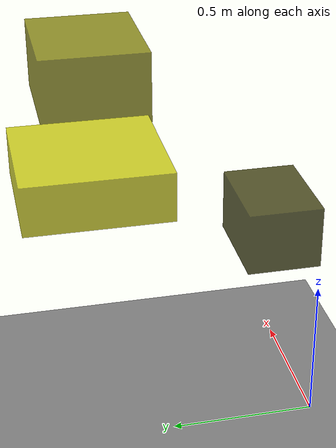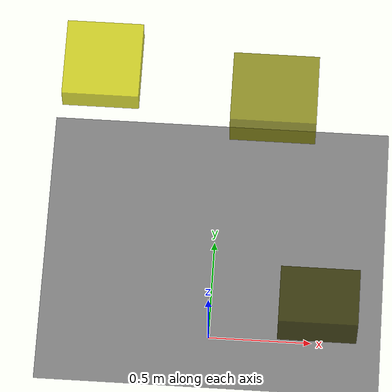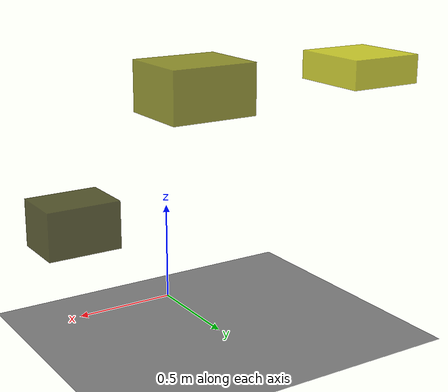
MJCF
<?xml version="1.0"?>
<mujoco model="obstacle_scene">
  <compiler angle="radian" coordinate="local"/>
  <option timestep="0.001" gravity="0 0 -9.81"/>

  <asset>
    <material name="obstacle_mat" rgba="0.8 0.8 0.0 0.8"/>
    <material name="ground_mat" rgba="0.5 0.5 0.5 1"/>
  </asset>

  <worldbody>
    <!-- Ground plane -->
    <geom name="ground" type="plane" size="3 3 0.1" material="ground_mat"/>

    <!-- Obstacles -->
    <body name="obstacle_0" pos="0.523053 0.009124 0.498454">
      <geom name="obs_0" type="box" size="0.187612 0.139268 0.120501" rgba="0.2 0.2 0.0 0.8"/>
    </body>
    <body name="obstacle_1" pos="0.262564 0.717806 1.250314">
      <geom name="obs_1" type="box" size="0.196617 0.168434 0.111565" rgba="0.5 0.5 0.0 0.8"/>
    </body>
    <body name="obstacle_2" pos="-0.533878 0.825972 1.283405">
      <geom name="obs_2" type="box" size="0.175497 0.184500 0.064290" rgba="0.8 0.8 0.0 0.8"/>
    </body>
  </worldbody>
</mujoco>
